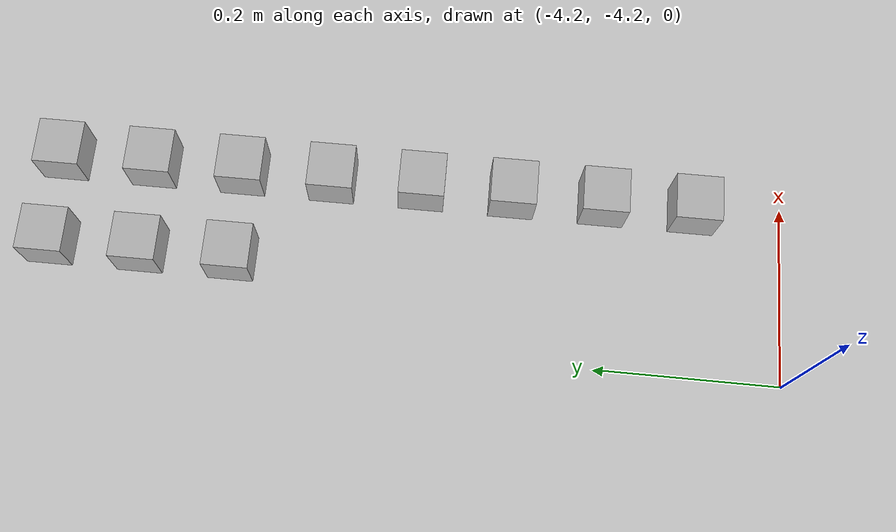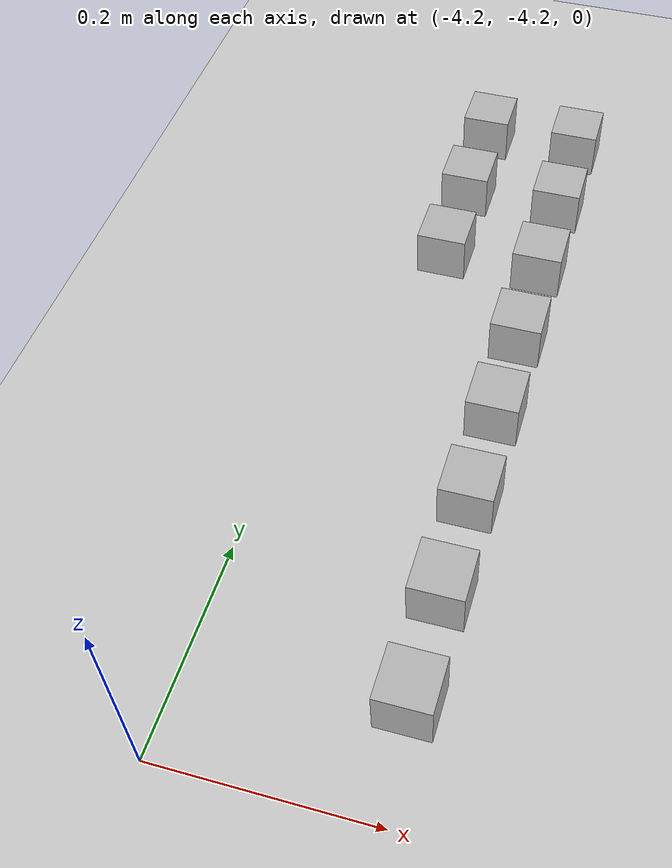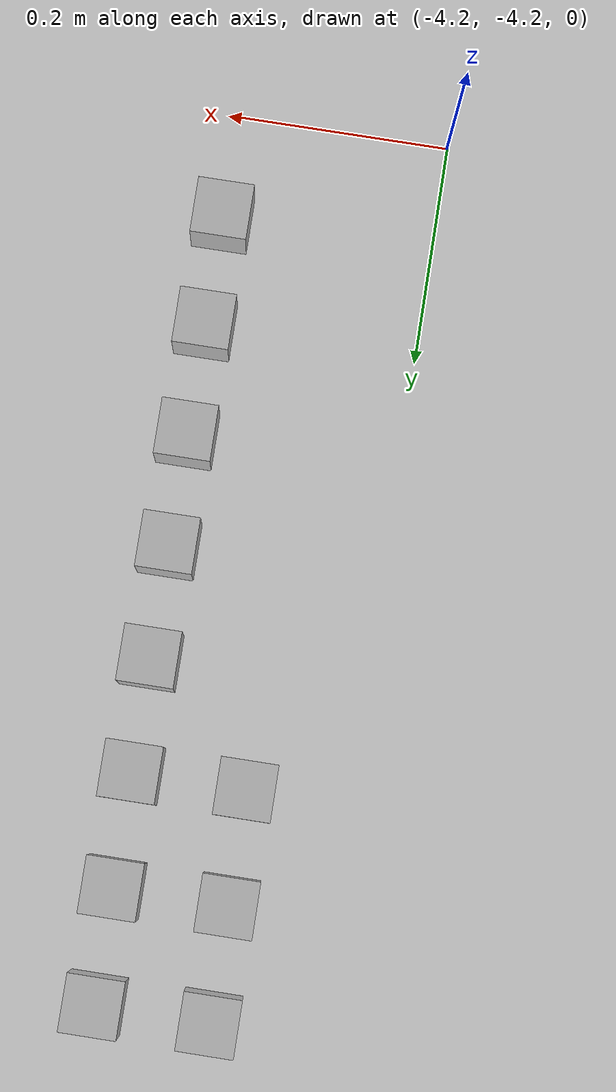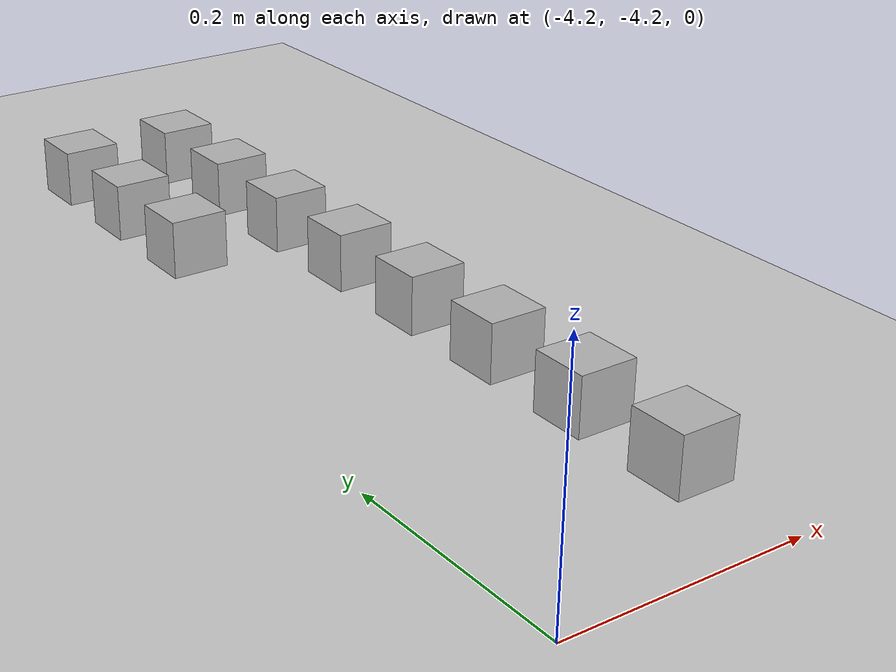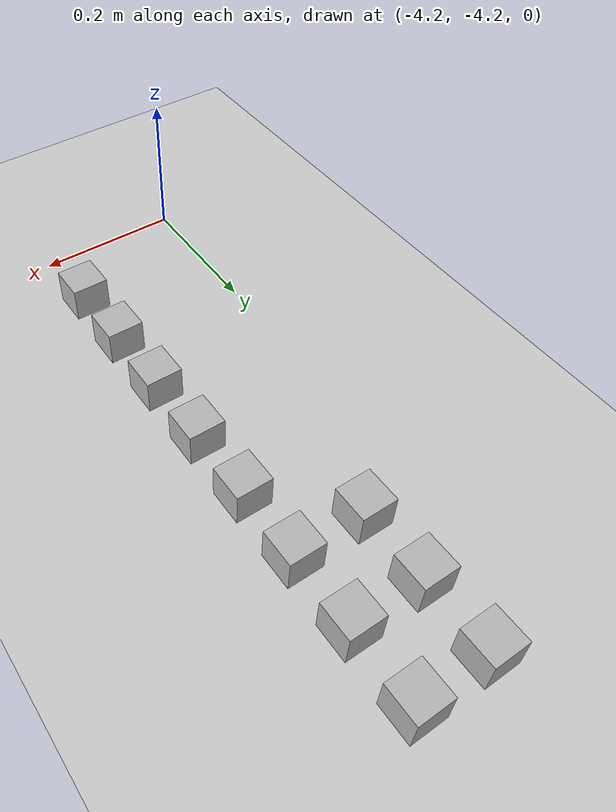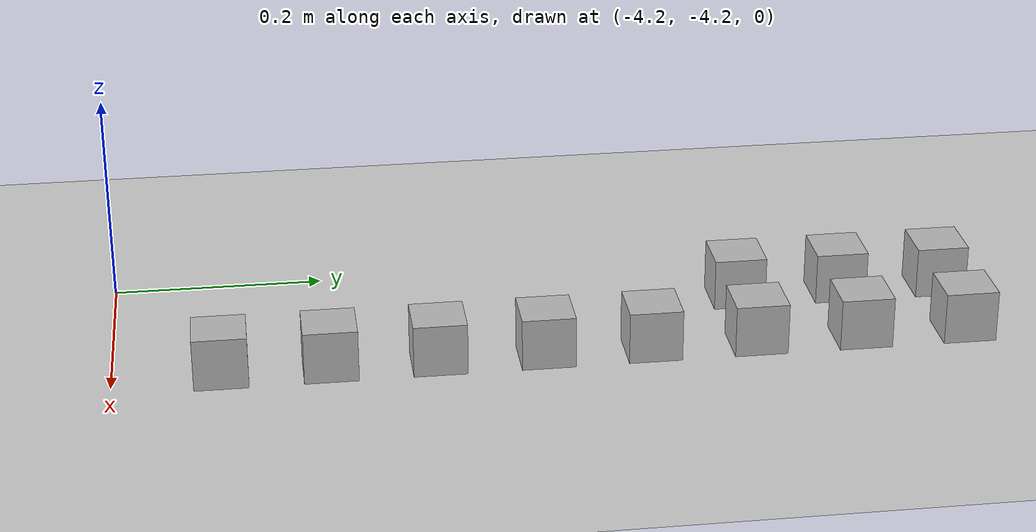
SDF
<sdf version="1.4">
 <world name="default">
  <model name="ground_plane">
   <static>1</static>
   <link name="link">
    <collision name="collision">
     <geometry><plane><normal>0 0 1</normal><size>100 100</size></plane></geometry>
     <surface><friction><ode><mu>100</mu><mu2>50</mu2></ode></friction></surface>
    </collision>
    <visual name="visual">
     <cast_shadows>0</cast_shadows>
     <geometry><plane><normal>0 0 1</normal><size>100 100</size></plane></geometry>
     <material>
      <script><uri>file://media/materials/scripts/gazebo.material</uri><name>Gazebo/Grey</name></script>
     </material>
    </visual>
    <velocity_decay><linear>0</linear><angular>0</angular></velocity_decay>
   </link>
  </model>
  <model name="at67">
   <static>0</static>
   <link name="link">
    <inertial>
     <mass>0.01</mass>
     <inertia><ixx>4e-05</ixx><ixy>0</ixy><ixz>0</ixz><iyy>4e-05</iyy><iyz>0</iyz><izz>4e-05</izz></inertia>
    </inertial>
    <visual name="visual">
     <geometry><box><size>0.05 0.05 0.05</size></box></geometry>
     <material>
      <script>
       <uri>model://at0/materials/scripts</uri>
       <uri>model://at0/materials/textures</uri>
       <name>at0/Diffuse</name>
      </script>
     </material>
    </visual>
    <collision name="collision">
     <geometry><box><size>0.05 0.05 0.05</size></box></geometry>
     <surface><friction><ode><mu>0.8</mu><mu2>0.7</mu2></ode></friction></surface>
    </collision>
    <velocity_decay><linear>0</linear><angular>0</angular></velocity_decay>
   </link>
   <pose>-4.01043 -4.10066 0.025 0 -0 0</pose>
  </model>
  <model name="at71">
   <static>0</static>
   <link name="link">
    <inertial>
     <mass>0.01</mass>
     <inertia><ixx>4e-05</ixx><ixy>0</ixy><ixz>0</ixz><iyy>4e-05</iyy><iyz>0</iyz><izz>4e-05</izz></inertia>
    </inertial>
    <visual name="visual">
     <geometry><box><size>0.05 0.05 0.05</size></box></geometry>
     <material>
      <script>
       <uri>model://at0/materials/scripts</uri>
       <uri>model://at0/materials/textures</uri>
       <name>at0/Diffuse</name>
      </script>
     </material>
    </visual>
    <collision name="collision">
     <geometry><box><size>0.05 0.05 0.05</size></box></geometry>
     <surface><friction><ode><mu>0.8</mu><mu2>0.7</mu2></ode></friction></surface>
    </collision>
    <velocity_decay><linear>0</linear><angular>0</angular></velocity_decay>
   </link>
   <pose>-4.01043 -4.00066 0.025 0 -0 0</pose>
  </model>
  <model name="at75">
   <static>0</static>
   <link name="link">
    <inertial>
     <mass>0.01</mass>
     <inertia><ixx>4e-05</ixx><ixy>0</ixy><ixz>0</ixz><iyy>4e-05</iyy><iyz>0</iyz><izz>4e-05</izz></inertia>
    </inertial>
    <visual name="visual">
     <geometry><box><size>0.05 0.05 0.05</size></box></geometry>
     <material>
      <script>
       <uri>model://at0/materials/scripts</uri>
       <uri>model://at0/materials/textures</uri>
       <name>at0/Diffuse</name>
      </script>
     </material>
    </visual>
    <collision name="collision">
     <geometry><box><size>0.05 0.05 0.05</size></box></geometry>
     <surface><friction><ode><mu>0.8</mu><mu2>0.7</mu2></ode></friction></surface>
    </collision>
    <velocity_decay><linear>0</linear><angular>0</angular></velocity_decay>
   </link>
   <pose>-4.01043 -3.90066 0.025 0 -0 0</pose>
  </model>
  <model name="at79">
   <static>0</static>
   <link name="link">
    <inertial>
     <mass>0.01</mass>
     <inertia><ixx>4e-05</ixx><ixy>0</ixy><ixz>0</ixz><iyy>4e-05</iyy><iyz>0</iyz><izz>4e-05</izz></inertia>
    </inertial>
    <visual name="visual">
     <geometry><box><size>0.05 0.05 0.05</size></box></geometry>
     <material>
      <script>
       <uri>model://at0/materials/scripts</uri>
       <uri>model://at0/materials/textures</uri>
       <name>at0/Diffuse</name>
      </script>
     </material>
    </visual>
    <collision name="collision">
     <geometry><box><size>0.05 0.05 0.05</size></box></geometry>
     <surface><friction><ode><mu>0.8</mu><mu2>0.7</mu2></ode></friction></surface>
    </collision>
    <velocity_decay><linear>0</linear><angular>0</angular></velocity_decay>
   </link>
   <pose>-4.01043 -3.80066 0.025 0 -0 0</pose>
  </model>
  <model name="at83">
   <static>0</static>
   <link name="link">
    <inertial>
     <mass>0.01</mass>
     <inertia><ixx>4e-05</ixx><ixy>0</ixy><ixz>0</ixz><iyy>4e-05</iyy><iyz>0</iyz><izz>4e-05</izz></inertia>
    </inertial>
    <visual name="visual">
     <geometry><box><size>0.05 0.05 0.05</size></box></geometry>
     <material>
      <script>
       <uri>model://at0/materials/scripts</uri>
       <uri>model://at0/materials/textures</uri>
       <name>at0/Diffuse</name>
      </script>
     </material>
    </visual>
    <collision name="collision">
     <geometry><box><size>0.05 0.05 0.05</size></box></geometry>
     <surface><friction><ode><mu>0.8</mu><mu2>0.7</mu2></ode></friction></surface>
    </collision>
    <velocity_decay><linear>0</linear><angular>0</angular></velocity_decay>
   </link>
   <pose>-4.01043 -3.70066 0.025 0 -0 0</pose>
  </model>
  <model name="at86">
   <static>0</static>
   <link name="link">
    <inertial>
     <mass>0.01</mass>
     <inertia><ixx>4e-05</ixx><ixy>0</ixy><ixz>0</ixz><iyy>4e-05</iyy><iyz>0</iyz><izz>4e-05</izz></inertia>
    </inertial>
    <visual name="visual">
     <geometry><box><size>0.05 0.05 0.05</size></box></geometry>
     <material>
      <script>
       <uri>model://at0/materials/scripts</uri>
       <uri>model://at0/materials/textures</uri>
       <name>at0/Diffuse</name>
      </script>
     </material>
    </visual>
    <collision name="collision">
     <geometry><box><size>0.05 0.05 0.05</size></box></geometry>
     <surface><friction><ode><mu>0.8</mu><mu2>0.7</mu2></ode></friction></surface>
    </collision>
    <velocity_decay><linear>0</linear><angular>0</angular></velocity_decay>
   </link>
   <pose>-4.11043 -3.60066 0.025 0 -0 0</pose>
  </model>
  <model name="at87">
   <static>0</static>
   <link name="link">
    <inertial>
     <mass>0.01</mass>
     <inertia><ixx>4e-05</ixx><ixy>0</ixy><ixz>0</ixz><iyy>4e-05</iyy><iyz>0</iyz><izz>4e-05</izz></inertia>
    </inertial>
    <visual name="visual">
     <geometry><box><size>0.05 0.05 0.05</size></box></geometry>
     <material>
      <script>
       <uri>model://at0/materials/scripts</uri>
       <uri>model://at0/materials/textures</uri>
       <name>at0/Diffuse</name>
      </script>
     </material>
    </visual>
    <collision name="collision">
     <geometry><box><size>0.05 0.05 0.05</size></box></geometry>
     <surface><friction><ode><mu>0.8</mu><mu2>0.7</mu2></ode></friction></surface>
    </collision>
    <velocity_decay><linear>0</linear><angular>0</angular></velocity_decay>
   </link>
   <pose>-4.01043 -3.60066 0.025 0 -0 0</pose>
  </model>
  <model name="at90">
   <static>0</static>
   <link name="link">
    <inertial>
     <mass>0.01</mass>
     <inertia><ixx>4e-05</ixx><ixy>0</ixy><ixz>0</ixz><iyy>4e-05</iyy><iyz>0</iyz><izz>4e-05</izz></inertia>
    </inertial>
    <visual name="visual">
     <geometry><box><size>0.05 0.05 0.05</size></box></geometry>
     <material>
      <script>
       <uri>model://at0/materials/scripts</uri>
       <uri>model://at0/materials/textures</uri>
       <name>at0/Diffuse</name>
      </script>
     </material>
    </visual>
    <collision name="collision">
     <geometry><box><size>0.05 0.05 0.05</size></box></geometry>
     <surface><friction><ode><mu>0.8</mu><mu2>0.7</mu2></ode></friction></surface>
    </collision>
    <velocity_decay><linear>0</linear><angular>0</angular></velocity_decay>
   </link>
   <pose>-4.11043 -3.50066 0.025 0 -0 0</pose>
  </model>
  <model name="at91">
   <static>0</static>
   <link name="link">
    <inertial>
     <mass>0.01</mass>
     <inertia><ixx>4e-05</ixx><ixy>0</ixy><ixz>0</ixz><iyy>4e-05</iyy><iyz>0</iyz><izz>4e-05</izz></inertia>
    </inertial>
    <visual name="visual">
     <geometry><box><size>0.05 0.05 0.05</size></box></geometry>
     <material>
      <script>
       <uri>model://at0/materials/scripts</uri>
       <uri>model://at0/materials/textures</uri>
       <name>at0/Diffuse</name>
      </script>
     </material>
    </visual>
    <collision name="collision">
     <geometry><box><size>0.05 0.05 0.05</size></box></geometry>
     <surface><friction><ode><mu>0.8</mu><mu2>0.7</mu2></ode></friction></surface>
    </collision>
    <velocity_decay><linear>0</linear><angular>0</angular></velocity_decay>
   </link>
   <pose>-4.01043 -3.50066 0.025 0 -0 0</pose>
  </model>
  <model name="at94">
   <static>0</static>
   <link name="link">
    <inertial>
     <mass>0.01</mass>
     <inertia><ixx>4e-05</ixx><ixy>0</ixy><ixz>0</ixz><iyy>4e-05</iyy><iyz>0</iyz><izz>4e-05</izz></inertia>
    </inertial>
    <visual name="visual">
     <geometry><box><size>0.05 0.05 0.05</size></box></geometry>
     <material>
      <script>
       <uri>model://at0/materials/scripts</uri>
       <uri>model://at0/materials/textures</uri>
       <name>at0/Diffuse</name>
      </script>
     </material>
    </visual>
    <collision name="collision">
     <geometry><box><size>0.05 0.05 0.05</size></box></geometry>
     <surface><friction><ode><mu>0.8</mu><mu2>0.7</mu2></ode></friction></surface>
    </collision>
    <velocity_decay><linear>0</linear><angular>0</angular></velocity_decay>
   </link>
   <pose>-4.11043 -3.40066 0.025 0 -0 0</pose>
  </model>
  <model name="at95">
   <static>0</static>
   <link name="link">
    <inertial>
     <mass>0.01</mass>
     <inertia><ixx>4e-05</ixx><ixy>0</ixy><ixz>0</ixz><iyy>4e-05</iyy><iyz>0</iyz><izz>4e-05</izz></inertia>
    </inertial>
    <visual name="visual">
     <geometry><box><size>0.05 0.05 0.05</size></box></geometry>
     <material>
      <script>
       <uri>model://at0/materials/scripts</uri>
       <uri>model://at0/materials/textures</uri>
       <name>at0/Diffuse</name>
      </script>
     </material>
    </visual>
    <collision name="collision">
     <geometry><box><size>0.05 0.05 0.05</size></box></geometry>
     <surface><friction><ode><mu>0.8</mu><mu2>0.7</mu2></ode></friction></surface>
    </collision>
    <velocity_decay><linear>0</linear><angular>0</angular></velocity_decay>
   </link>
   <pose>-4.01043 -3.40066 0.025 0 -0 0</pose>
  </model>
 </world>
</sdf>
